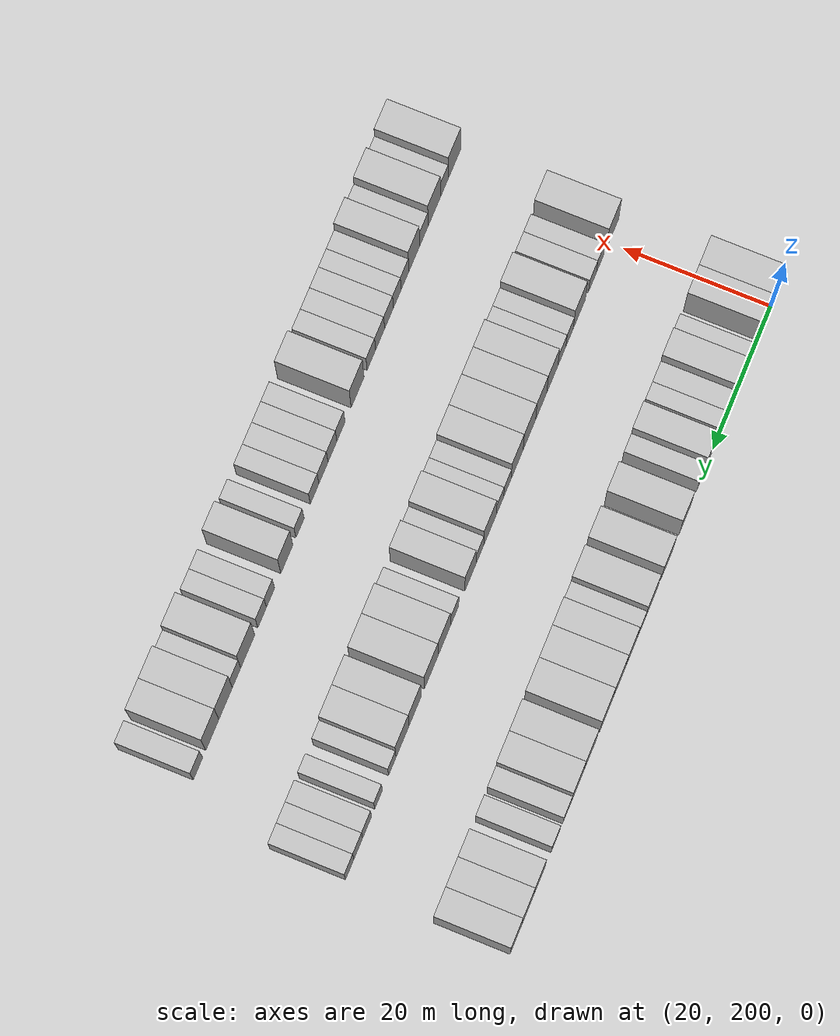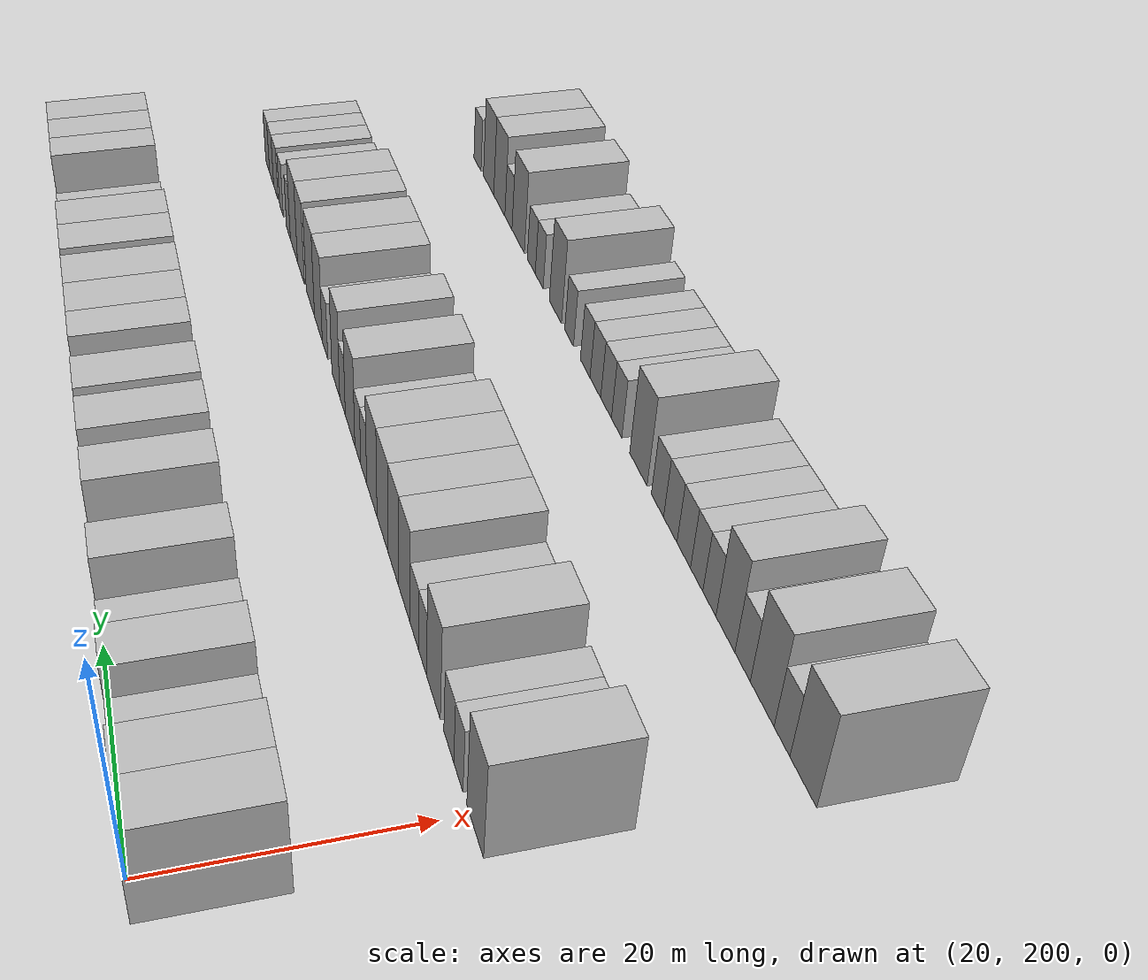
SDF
<sdf version="1.6">
 <world name="default">
  <model name="building_151">
   <static>1</static>
   <pose>25.0000 198.8395 0 0.000000 0.000000 0.000000</pose>
   <link name="link">
    <pose>0 0 4.50 0 0 0</pose>
    <collision name="collision"><geometry><box><size>10.0000 4.0665 9.0000</size></box></geometry></collision>
    <visual name="visual">
     <cast_shadows>0</cast_shadows>
     <geometry><box><size>10.0000 4.0665 9.0000</size></box></geometry>
     <material>
      <script>
       <uri>model://HANNAS_wall/materials/scripts</uri>
       <uri>model://HANNAS_wall/materials/textures</uri>
       <name>vrc/HANNAS_wall</name>
      </script>
     </material>
    </visual>
   </link>
  </model>
  <model name="building_152">
   <static>1</static>
   <pose>25.0000 202.8306 0 0.000000 0.000000 0.000000</pose>
   <link name="link">
    <pose>0 0 4.50 0 0 0</pose>
    <collision name="collision"><geometry><box><size>10.0000 3.9157 9.0000</size></box></geometry></collision>
    <visual name="visual">
     <cast_shadows>0</cast_shadows>
     <geometry><box><size>10.0000 3.9157 9.0000</size></box></geometry>
     <material>
      <script>
       <uri>model://HANNAS_wall/materials/scripts</uri>
       <uri>model://HANNAS_wall/materials/textures</uri>
       <name>vrc/HANNAS_wall</name>
      </script>
     </material>
    </visual>
   </link>
  </model>
  <model name="building_153">
   <static>1</static>
   <pose>25.0000 208.1707 0 0.000000 0.000000 0.000000</pose>
   <link name="link">
    <pose>0 0 3.00 0 0 0</pose>
    <collision name="collision"><geometry><box><size>10.0000 2.7646 6.0000</size></box></geometry></collision>
    <visual name="visual">
     <cast_shadows>0</cast_shadows>
     <geometry><box><size>10.0000 2.7646 6.0000</size></box></geometry>
     <material>
      <script>
       <uri>model://HANNAS_wall/materials/scripts</uri>
       <uri>model://HANNAS_wall/materials/textures</uri>
       <name>vrc/HANNAS_wall</name>
      </script>
     </material>
    </visual>
   </link>
  </model>
  <model name="building_154">
   <static>1</static>
   <pose>25.0000 211.4504 0 0.000000 0.000000 0.000000</pose>
   <link name="link">
    <pose>0 0 4.50 0 0 0</pose>
    <collision name="collision"><geometry><box><size>10.0000 3.7949 9.0000</size></box></geometry></collision>
    <visual name="visual">
     <cast_shadows>0</cast_shadows>
     <geometry><box><size>10.0000 3.7949 9.0000</size></box></geometry>
     <material>
      <script>
       <uri>model://HANNAS_wall/materials/scripts</uri>
       <uri>model://HANNAS_wall/materials/textures</uri>
       <name>vrc/HANNAS_wall</name>
      </script>
     </material>
    </visual>
   </link>
  </model>
  <model name="building_155">
   <static>1</static>
   <pose>25.0000 214.7604 0 0.000000 0.000000 0.000000</pose>
   <link name="link">
    <pose>0 0 3.00 0 0 0</pose>
    <collision name="collision"><geometry><box><size>10.0000 2.8251 6.0000</size></box></geometry></collision>
    <visual name="visual">
     <cast_shadows>0</cast_shadows>
     <geometry><box><size>10.0000 2.8251 6.0000</size></box></geometry>
     <material>
      <script>
       <uri>model://HANNAS_wall/materials/scripts</uri>
       <uri>model://HANNAS_wall/materials/textures</uri>
       <name>vrc/HANNAS_wall</name>
      </script>
     </material>
    </visual>
   </link>
  </model>
  <model name="building_156">
   <static>1</static>
   <pose>25.0000 217.3881 0 0.000000 0.000000 0.000000</pose>
   <link name="link">
    <pose>0 0 3.00 0 0 0</pose>
    <collision name="collision"><geometry><box><size>10.0000 2.4304 6.0000</size></box></geometry></collision>
    <visual name="visual">
     <cast_shadows>0</cast_shadows>
     <geometry><box><size>10.0000 2.4304 6.0000</size></box></geometry>
     <material>
      <script>
       <uri>model://HANNAS_wall/materials/scripts</uri>
       <uri>model://HANNAS_wall/materials/textures</uri>
       <name>vrc/HANNAS_wall</name>
      </script>
     </material>
    </visual>
   </link>
  </model>
  <model name="building_157">
   <static>1</static>
   <pose>25.0000 221.4454 0 0.000000 0.000000 0.000000</pose>
   <link name="link">
    <pose>0 0 4.50 0 0 0</pose>
    <collision name="collision"><geometry><box><size>10.0000 3.6842 9.0000</size></box></geometry></collision>
    <visual name="visual">
     <cast_shadows>0</cast_shadows>
     <geometry><box><size>10.0000 3.6842 9.0000</size></box></geometry>
     <material>
      <script>
       <uri>model://HANNAS_wall/materials/scripts</uri>
       <uri>model://HANNAS_wall/materials/textures</uri>
       <name>vrc/HANNAS_wall</name>
      </script>
     </material>
    </visual>
   </link>
  </model>
  <model name="building_158">
   <static>1</static>
   <pose>25.0000 224.5433 0 0.000000 0.000000 0.000000</pose>
   <link name="link">
    <pose>0 0 3.00 0 0 0</pose>
    <collision name="collision"><geometry><box><size>10.0000 2.5116 6.0000</size></box></geometry></collision>
    <visual name="visual">
     <cast_shadows>0</cast_shadows>
     <geometry><box><size>10.0000 2.5116 6.0000</size></box></geometry>
     <material>
      <script>
       <uri>model://HANNAS_wall/materials/scripts</uri>
       <uri>model://HANNAS_wall/materials/textures</uri>
       <name>vrc/HANNAS_wall</name>
      </script>
     </material>
    </visual>
   </link>
  </model>
  <model name="building_159">
   <static>1</static>
   <pose>25.0000 229.7983 0 0.000000 0.000000 0.000000</pose>
   <link name="link">
    <pose>0 0 4.50 0 0 0</pose>
    <collision name="collision"><geometry><box><size>10.0000 3.9984 9.0000</size></box></geometry></collision>
    <visual name="visual">
     <cast_shadows>0</cast_shadows>
     <geometry><box><size>10.0000 3.9984 9.0000</size></box></geometry>
     <material>
      <script>
       <uri>model://HANNAS_wall/materials/scripts</uri>
       <uri>model://HANNAS_wall/materials/textures</uri>
       <name>vrc/HANNAS_wall</name>
      </script>
     </material>
    </visual>
   </link>
  </model>
  <model name="building_160">
   <static>1</static>
   <pose>25.0000 235.8976 0 0.000000 0.000000 0.000000</pose>
   <link name="link">
    <pose>0 0 4.50 0 0 0</pose>
    <collision name="collision"><geometry><box><size>10.0000 4.2003 9.0000</size></box></geometry></collision>
    <visual name="visual">
     <cast_shadows>0</cast_shadows>
     <geometry><box><size>10.0000 4.2003 9.0000</size></box></geometry>
     <material>
      <script>
       <uri>model://HANNAS_wall/materials/scripts</uri>
       <uri>model://HANNAS_wall/materials/textures</uri>
       <name>vrc/HANNAS_wall</name>
      </script>
     </material>
    </visual>
   </link>
  </model>
  <model name="building_161">
   <static>1</static>
   <pose>25.0000 241.1460 0 0.000000 0.000000 0.000000</pose>
   <link name="link">
    <pose>0 0 4.50 0 0 0</pose>
    <collision name="collision"><geometry><box><size>10.0000 4.2965 9.0000</size></box></geometry></collision>
    <visual name="visual">
     <cast_shadows>0</cast_shadows>
     <geometry><box><size>10.0000 4.2965 9.0000</size></box></geometry>
     <material>
      <script>
       <uri>model://HANNAS_wall/materials/scripts</uri>
       <uri>model://HANNAS_wall/materials/textures</uri>
       <name>vrc/HANNAS_wall</name>
      </script>
     </material>
    </visual>
   </link>
  </model>
  <model name="building_162">
   <static>1</static>
   <pose>25.0000 244.6496 0 0.000000 0.000000 0.000000</pose>
   <link name="link">
    <pose>0 0 3.00 0 0 0</pose>
    <collision name="collision"><geometry><box><size>10.0000 2.7106 6.0000</size></box></geometry></collision>
    <visual name="visual">
     <cast_shadows>0</cast_shadows>
     <geometry><box><size>10.0000 2.7106 6.0000</size></box></geometry>
     <material>
      <script>
       <uri>model://HANNAS_wall/materials/scripts</uri>
       <uri>model://HANNAS_wall/materials/textures</uri>
       <name>vrc/HANNAS_wall</name>
      </script>
     </material>
    </visual>
   </link>
  </model>
  <model name="building_163">
   <static>1</static>
   <pose>25.0000 247.8586 0 0.000000 0.000000 0.000000</pose>
   <link name="link">
    <pose>0 0 4.50 0 0 0</pose>
    <collision name="collision"><geometry><box><size>10.0000 3.7075 9.0000</size></box></geometry></collision>
    <visual name="visual">
     <cast_shadows>0</cast_shadows>
     <geometry><box><size>10.0000 3.7075 9.0000</size></box></geometry>
     <material>
      <script>
       <uri>model://HANNAS_wall/materials/scripts</uri>
       <uri>model://HANNAS_wall/materials/textures</uri>
       <name>vrc/HANNAS_wall</name>
      </script>
     </material>
    </visual>
   </link>
  </model>
  <model name="building_164">
   <static>1</static>
   <pose>25.0000 251.8701 0 0.000000 0.000000 0.000000</pose>
   <link name="link">
    <pose>0 0 4.50 0 0 0</pose>
    <collision name="collision"><geometry><box><size>10.0000 4.3155 9.0000</size></box></geometry></collision>
    <visual name="visual">
     <cast_shadows>0</cast_shadows>
     <geometry><box><size>10.0000 4.3155 9.0000</size></box></geometry>
     <material>
      <script>
       <uri>model://HANNAS_wall/materials/scripts</uri>
       <uri>model://HANNAS_wall/materials/textures</uri>
       <name>vrc/HANNAS_wall</name>
      </script>
     </material>
    </visual>
   </link>
  </model>
  <model name="building_165">
   <static>1</static>
   <pose>25.0000 256.2636 0 0.000000 0.000000 0.000000</pose>
   <link name="link">
    <pose>0 0 4.50 0 0 0</pose>
    <collision name="collision"><geometry><box><size>10.0000 4.4715 9.0000</size></box></geometry></collision>
    <visual name="visual">
     <cast_shadows>0</cast_shadows>
     <geometry><box><size>10.0000 4.4715 9.0000</size></box></geometry>
     <material>
      <script>
       <uri>model://HANNAS_wall/materials/scripts</uri>
       <uri>model://HANNAS_wall/materials/textures</uri>
       <name>vrc/HANNAS_wall</name>
      </script>
     </material>
    </visual>
   </link>
  </model>
  <model name="building_166">
   <static>1</static>
   <pose>25.0000 261.6000 0 0.000000 0.000000 0.000000</pose>
   <link name="link">
    <pose>0 0 4.50 0 0 0</pose>
    <collision name="collision"><geometry><box><size>10.0000 4.2015 9.0000</size></box></geometry></collision>
    <visual name="visual">
     <cast_shadows>0</cast_shadows>
     <geometry><box><size>10.0000 4.2015 9.0000</size></box></geometry>
     <material>
      <script>
       <uri>model://HANNAS_wall/materials/scripts</uri>
       <uri>model://HANNAS_wall/materials/textures</uri>
       <name>vrc/HANNAS_wall</name>
      </script>
     </material>
    </visual>
   </link>
  </model>
  <model name="building_167">
   <static>1</static>
   <pose>25.0000 265.7831 0 0.000000 0.000000 0.000000</pose>
   <link name="link">
    <pose>0 0 4.50 0 0 0</pose>
    <collision name="collision"><geometry><box><size>10.0000 4.1646 9.0000</size></box></geometry></collision>
    <visual name="visual">
     <cast_shadows>0</cast_shadows>
     <geometry><box><size>10.0000 4.1646 9.0000</size></box></geometry>
     <material>
      <script>
       <uri>model://HANNAS_wall/materials/scripts</uri>
       <uri>model://HANNAS_wall/materials/textures</uri>
       <name>vrc/HANNAS_wall</name>
      </script>
     </material>
    </visual>
   </link>
  </model>
  <model name="building_168">
   <static>1</static>
   <pose>25.0000 269.2791 0 0.000000 0.000000 0.000000</pose>
   <link name="link">
    <pose>0 0 3.00 0 0 0</pose>
    <collision name="collision"><geometry><box><size>10.0000 2.8274 6.0000</size></box></geometry></collision>
    <visual name="visual">
     <cast_shadows>0</cast_shadows>
     <geometry><box><size>10.0000 2.8274 6.0000</size></box></geometry>
     <material>
      <script>
       <uri>model://HANNAS_wall/materials/scripts</uri>
       <uri>model://HANNAS_wall/materials/textures</uri>
       <name>vrc/HANNAS_wall</name>
      </script>
     </material>
    </visual>
   </link>
  </model>
  <model name="building_169">
   <static>1</static>
   <pose>25.0000 273.1002 0 0.000000 0.000000 0.000000</pose>
   <link name="link">
    <pose>0 0 3.00 0 0 0</pose>
    <collision name="collision"><geometry><box><size>10.0000 2.8147 6.0000</size></box></geometry></collision>
    <visual name="visual">
     <cast_shadows>0</cast_shadows>
     <geometry><box><size>10.0000 2.8147 6.0000</size></box></geometry>
     <material>
      <script>
       <uri>model://HANNAS_wall/materials/scripts</uri>
       <uri>model://HANNAS_wall/materials/textures</uri>
       <name>vrc/HANNAS_wall</name>
      </script>
     </material>
    </visual>
   </link>
  </model>
  <model name="building_170">
   <static>1</static>
   <pose>25.0000 278.3280 0 0.000000 0.000000 0.000000</pose>
   <link name="link">
    <pose>0 0 4.50 0 0 0</pose>
    <collision name="collision"><geometry><box><size>10.0000 3.6409 9.0000</size></box></geometry></collision>
    <visual name="visual">
     <cast_shadows>0</cast_shadows>
     <geometry><box><size>10.0000 3.6409 9.0000</size></box></geometry>
     <material>
      <script>
       <uri>model://HANNAS_wall/materials/scripts</uri>
       <uri>model://HANNAS_wall/materials/textures</uri>
       <name>vrc/HANNAS_wall</name>
      </script>
     </material>
    </visual>
   </link>
  </model>
  <model name="building_171">
   <static>1</static>
   <pose>25.0000 282.0927 0 0.000000 0.000000 0.000000</pose>
   <link name="link">
    <pose>0 0 4.50 0 0 0</pose>
    <collision name="collision"><geometry><box><size>10.0000 3.8886 9.0000</size></box></geometry></collision>
    <visual name="visual">
     <cast_shadows>0</cast_shadows>
     <geometry><box><size>10.0000 3.8886 9.0000</size></box></geometry>
     <material>
      <script>
       <uri>model://HANNAS_wall/materials/scripts</uri>
       <uri>model://HANNAS_wall/materials/textures</uri>
       <name>vrc/HANNAS_wall</name>
      </script>
     </material>
    </visual>
   </link>
  </model>
  <model name="building_172">
   <static>1</static>
   <pose>25.0000 285.9681 0 0.000000 0.000000 0.000000</pose>
   <link name="link">
    <pose>0 0 4.50 0 0 0</pose>
    <collision name="collision"><geometry><box><size>10.0000 3.8622 9.0000</size></box></geometry></collision>
    <visual name="visual">
     <cast_shadows>0</cast_shadows>
     <geometry><box><size>10.0000 3.8622 9.0000</size></box></geometry>
     <material>
      <script>
       <uri>model://HANNAS_wall/materials/scripts</uri>
       <uri>model://HANNAS_wall/materials/textures</uri>
       <name>vrc/HANNAS_wall</name>
      </script>
     </material>
    </visual>
   </link>
  </model>
  <model name="building_349">
   <static>1</static>
   <pose>47.0000 198.7653 0 0.000000 0.000000 0.000000</pose>
   <link name="link">
    <pose>0 0 4.50 0 0 0</pose>
    <collision name="collision"><geometry><box><size>10.0000 4.2036 9.0000</size></box></geometry></collision>
    <visual name="visual">
     <cast_shadows>0</cast_shadows>
     <geometry><box><size>10.0000 4.2036 9.0000</size></box></geometry>
     <material>
      <script>
       <uri>model://HANNAS_wall/materials/scripts</uri>
       <uri>model://HANNAS_wall/materials/textures</uri>
       <name>vrc/HANNAS_wall</name>
      </script>
     </material>
    </visual>
   </link>
  </model>
  <model name="building_350">
   <static>1</static>
   <pose>47.0000 203.0948 0 0.000000 0.000000 0.000000</pose>
   <link name="link">
    <pose>0 0 3.00 0 0 0</pose>
    <collision name="collision"><geometry><box><size>10.0000 2.4553 6.0000</size></box></geometry></collision>
    <visual name="visual">
     <cast_shadows>0</cast_shadows>
     <geometry><box><size>10.0000 2.4553 6.0000</size></box></geometry>
     <material>
      <script>
       <uri>model://HANNAS_wall/materials/scripts</uri>
       <uri>model://HANNAS_wall/materials/textures</uri>
       <name>vrc/HANNAS_wall</name>
      </script>
     </material>
    </visual>
   </link>
  </model>
  <model name="building_351">
   <static>1</static>
   <pose>47.0000 205.7005 0 0.000000 0.000000 0.000000</pose>
   <link name="link">
    <pose>0 0 3.00 0 0 0</pose>
    <collision name="collision"><geometry><box><size>10.0000 2.7562 6.0000</size></box></geometry></collision>
    <visual name="visual">
     <cast_shadows>0</cast_shadows>
     <geometry><box><size>10.0000 2.7562 6.0000</size></box></geometry>
     <material>
      <script>
       <uri>model://HANNAS_wall/materials/scripts</uri>
       <uri>model://HANNAS_wall/materials/textures</uri>
       <name>vrc/HANNAS_wall</name>
      </script>
     </material>
    </visual>
   </link>
  </model>
  <model name="building_352">
   <static>1</static>
   <pose>47.0000 210.1331 0 0.000000 0.000000 0.000000</pose>
   <link name="link">
    <pose>0 0 4.50 0 0 0</pose>
    <collision name="collision"><geometry><box><size>10.0000 4.1090 9.0000</size></box></geometry></collision>
    <visual name="visual">
     <cast_shadows>0</cast_shadows>
     <geometry><box><size>10.0000 4.1090 9.0000</size></box></geometry>
     <material>
      <script>
       <uri>model://HANNAS_wall/materials/scripts</uri>
       <uri>model://HANNAS_wall/materials/textures</uri>
       <name>vrc/HANNAS_wall</name>
      </script>
     </material>
    </visual>
   </link>
  </model>
  <model name="building_353">
   <static>1</static>
   <pose>47.0000 213.4227 0 0.000000 0.000000 0.000000</pose>
   <link name="link">
    <pose>0 0 3.00 0 0 0</pose>
    <collision name="collision"><geometry><box><size>10.0000 2.4702 6.0000</size></box></geometry></collision>
    <visual name="visual">
     <cast_shadows>0</cast_shadows>
     <geometry><box><size>10.0000 2.4702 6.0000</size></box></geometry>
     <material>
      <script>
       <uri>model://HANNAS_wall/materials/scripts</uri>
       <uri>model://HANNAS_wall/materials/textures</uri>
       <name>vrc/HANNAS_wall</name>
      </script>
     </material>
    </visual>
   </link>
  </model>
  <model name="building_354">
   <static>1</static>
   <pose>47.0000 216.0249 0 0.000000 0.000000 0.000000</pose>
   <link name="link">
    <pose>0 0 3.00 0 0 0</pose>
    <collision name="collision"><geometry><box><size>10.0000 2.7341 6.0000</size></box></geometry></collision>
    <visual name="visual">
     <cast_shadows>0</cast_shadows>
     <geometry><box><size>10.0000 2.7341 6.0000</size></box></geometry>
     <material>
      <script>
       <uri>model://HANNAS_wall/materials/scripts</uri>
       <uri>model://HANNAS_wall/materials/textures</uri>
       <name>vrc/HANNAS_wall</name>
      </script>
     </material>
    </visual>
   </link>
  </model>
  <model name="building_355">
   <static>1</static>
   <pose>47.0000 219.2687 0 0.000000 0.000000 0.000000</pose>
   <link name="link">
    <pose>0 0 4.50 0 0 0</pose>
    <collision name="collision"><geometry><box><size>10.0000 3.7533 9.0000</size></box></geometry></collision>
    <visual name="visual">
     <cast_shadows>0</cast_shadows>
     <geometry><box><size>10.0000 3.7533 9.0000</size></box></geometry>
     <material>
      <script>
       <uri>model://HANNAS_wall/materials/scripts</uri>
       <uri>model://HANNAS_wall/materials/textures</uri>
       <name>vrc/HANNAS_wall</name>
      </script>
     </material>
    </visual>
   </link>
  </model>
  <model name="building_356">
   <static>1</static>
   <pose>47.0000 223.0115 0 0.000000 0.000000 0.000000</pose>
   <link name="link">
    <pose>0 0 4.50 0 0 0</pose>
    <collision name="collision"><geometry><box><size>10.0000 3.7324 9.0000</size></box></geometry></collision>
    <visual name="visual">
     <cast_shadows>0</cast_shadows>
     <geometry><box><size>10.0000 3.7324 9.0000</size></box></geometry>
     <material>
      <script>
       <uri>model://HANNAS_wall/materials/scripts</uri>
       <uri>model://HANNAS_wall/materials/textures</uri>
       <name>vrc/HANNAS_wall</name>
      </script>
     </material>
    </visual>
   </link>
  </model>
  <model name="building_357">
   <static>1</static>
   <pose>47.0000 226.9668 0 0.000000 0.000000 0.000000</pose>
   <link name="link">
    <pose>0 0 4.50 0 0 0</pose>
    <collision name="collision"><geometry><box><size>10.0000 4.1781 9.0000</size></box></geometry></collision>
    <visual name="visual">
     <cast_shadows>0</cast_shadows>
     <geometry><box><size>10.0000 4.1781 9.0000</size></box></geometry>
     <material>
      <script>
       <uri>model://HANNAS_wall/materials/scripts</uri>
       <uri>model://HANNAS_wall/materials/textures</uri>
       <name>vrc/HANNAS_wall</name>
      </script>
     </material>
    </visual>
   </link>
  </model>
  <model name="building_358">
   <static>1</static>
   <pose>47.0000 231.0822 0 0.000000 0.000000 0.000000</pose>
   <link name="link">
    <pose>0 0 4.50 0 0 0</pose>
    <collision name="collision"><geometry><box><size>10.0000 4.0526 9.0000</size></box></geometry></collision>
    <visual name="visual">
     <cast_shadows>0</cast_shadows>
     <geometry><box><size>10.0000 4.0526 9.0000</size></box></geometry>
     <material>
      <script>
       <uri>model://HANNAS_wall/materials/scripts</uri>
       <uri>model://HANNAS_wall/materials/textures</uri>
       <name>vrc/HANNAS_wall</name>
      </script>
     </material>
    </visual>
   </link>
  </model>
  <model name="building_359">
   <static>1</static>
   <pose>47.0000 234.3219 0 0.000000 0.000000 0.000000</pose>
   <link name="link">
    <pose>0 0 3.00 0 0 0</pose>
    <collision name="collision"><geometry><box><size>10.0000 2.4268 6.0000</size></box></geometry></collision>
    <visual name="visual">
     <cast_shadows>0</cast_shadows>
     <geometry><box><size>10.0000 2.4268 6.0000</size></box></geometry>
     <material>
      <script>
       <uri>model://HANNAS_wall/materials/scripts</uri>
       <uri>model://HANNAS_wall/materials/textures</uri>
       <name>vrc/HANNAS_wall</name>
      </script>
     </material>
    </visual>
   </link>
  </model>
  <model name="building_360">
   <static>1</static>
   <pose>47.0000 236.7715 0 0.000000 0.000000 0.000000</pose>
   <link name="link">
    <pose>0 0 3.00 0 0 0</pose>
    <collision name="collision"><geometry><box><size>10.0000 2.4724 6.0000</size></box></geometry></collision>
    <visual name="visual">
     <cast_shadows>0</cast_shadows>
     <geometry><box><size>10.0000 2.4724 6.0000</size></box></geometry>
     <material>
      <script>
       <uri>model://HANNAS_wall/materials/scripts</uri>
       <uri>model://HANNAS_wall/materials/textures</uri>
       <name>vrc/HANNAS_wall</name>
      </script>
     </material>
    </visual>
   </link>
  </model>
  <model name="building_361">
   <static>1</static>
   <pose>47.0000 240.0887 0 0.000000 0.000000 0.000000</pose>
   <link name="link">
    <pose>0 0 4.50 0 0 0</pose>
    <collision name="collision"><geometry><box><size>10.0000 4.1621 9.0000</size></box></geometry></collision>
    <visual name="visual">
     <cast_shadows>0</cast_shadows>
     <geometry><box><size>10.0000 4.1621 9.0000</size></box></geometry>
     <material>
      <script>
       <uri>model://HANNAS_wall/materials/scripts</uri>
       <uri>model://HANNAS_wall/materials/textures</uri>
       <name>vrc/HANNAS_wall</name>
      </script>
     </material>
    </visual>
   </link>
  </model>
  <model name="building_362">
   <static>1</static>
   <pose>47.0000 243.4440 0 0.000000 0.000000 0.000000</pose>
   <link name="link">
    <pose>0 0 3.00 0 0 0</pose>
    <collision name="collision"><geometry><box><size>10.0000 2.5485 6.0000</size></box></geometry></collision>
    <visual name="visual">
     <cast_shadows>0</cast_shadows>
     <geometry><box><size>10.0000 2.5485 6.0000</size></box></geometry>
     <material>
      <script>
       <uri>model://HANNAS_wall/materials/scripts</uri>
       <uri>model://HANNAS_wall/materials/textures</uri>
       <name>vrc/HANNAS_wall</name>
      </script>
     </material>
    </visual>
   </link>
  </model>
  <model name="building_363">
   <static>1</static>
   <pose>47.0000 246.5467 0 0.000000 0.000000 0.000000</pose>
   <link name="link">
    <pose>0 0 4.50 0 0 0</pose>
    <collision name="collision"><geometry><box><size>10.0000 3.6569 9.0000</size></box></geometry></collision>
    <visual name="visual">
     <cast_shadows>0</cast_shadows>
     <geometry><box><size>10.0000 3.6569 9.0000</size></box></geometry>
     <material>
      <script>
       <uri>model://HANNAS_wall/materials/scripts</uri>
       <uri>model://HANNAS_wall/materials/textures</uri>
       <name>vrc/HANNAS_wall</name>
      </script>
     </material>
    </visual>
   </link>
  </model>
  <model name="building_364">
   <static>1</static>
   <pose>47.0000 251.7498 0 0.000000 0.000000 0.000000</pose>
   <link name="link">
    <pose>0 0 3.00 0 0 0</pose>
    <collision name="collision"><geometry><box><size>10.0000 2.7493 6.0000</size></box></geometry></collision>
    <visual name="visual">
     <cast_shadows>0</cast_shadows>
     <geometry><box><size>10.0000 2.7493 6.0000</size></box></geometry>
     <material>
      <script>
       <uri>model://HANNAS_wall/materials/scripts</uri>
       <uri>model://HANNAS_wall/materials/textures</uri>
       <name>vrc/HANNAS_wall</name>
      </script>
     </material>
    </visual>
   </link>
  </model>
  <model name="building_365">
   <static>1</static>
   <pose>47.0000 255.1369 0 0.000000 0.000000 0.000000</pose>
   <link name="link">
    <pose>0 0 4.50 0 0 0</pose>
    <collision name="collision"><geometry><box><size>10.0000 4.0249 9.0000</size></box></geometry></collision>
    <visual name="visual">
     <cast_shadows>0</cast_shadows>
     <geometry><box><size>10.0000 4.0249 9.0000</size></box></geometry>
     <material>
      <script>
       <uri>model://HANNAS_wall/materials/scripts</uri>
       <uri>model://HANNAS_wall/materials/textures</uri>
       <name>vrc/HANNAS_wall</name>
      </script>
     </material>
    </visual>
   </link>
  </model>
  <model name="building_366">
   <static>1</static>
   <pose>47.0000 259.3922 0 0.000000 0.000000 0.000000</pose>
   <link name="link">
    <pose>0 0 4.50 0 0 0</pose>
    <collision name="collision"><geometry><box><size>10.0000 4.4857 9.0000</size></box></geometry></collision>
    <visual name="visual">
     <cast_shadows>0</cast_shadows>
     <geometry><box><size>10.0000 4.4857 9.0000</size></box></geometry>
     <material>
      <script>
       <uri>model://HANNAS_wall/materials/scripts</uri>
       <uri>model://HANNAS_wall/materials/textures</uri>
       <name>vrc/HANNAS_wall</name>
      </script>
     </material>
    </visual>
   </link>
  </model>
  <model name="building_367">
   <static>1</static>
   <pose>47.0000 264.6232 0 0.000000 0.000000 0.000000</pose>
   <link name="link">
    <pose>0 0 4.50 0 0 0</pose>
    <collision name="collision"><geometry><box><size>10.0000 3.9763 9.0000</size></box></geometry></collision>
    <visual name="visual">
     <cast_shadows>0</cast_shadows>
     <geometry><box><size>10.0000 3.9763 9.0000</size></box></geometry>
     <material>
      <script>
       <uri>model://HANNAS_wall/materials/scripts</uri>
       <uri>model://HANNAS_wall/materials/textures</uri>
       <name>vrc/HANNAS_wall</name>
      </script>
     </material>
    </visual>
   </link>
  </model>
  <model name="building_368">
   <static>1</static>
   <pose>47.0000 268.7238 0 0.000000 0.000000 0.000000</pose>
   <link name="link">
    <pose>0 0 4.50 0 0 0</pose>
    <collision name="collision"><geometry><box><size>10.0000 4.2251 9.0000</size></box></geometry></collision>
    <visual name="visual">
     <cast_shadows>0</cast_shadows>
     <geometry><box><size>10.0000 4.2251 9.0000</size></box></geometry>
     <material>
      <script>
       <uri>model://HANNAS_wall/materials/scripts</uri>
       <uri>model://HANNAS_wall/materials/textures</uri>
       <name>vrc/HANNAS_wall</name>
      </script>
     </material>
    </visual>
   </link>
  </model>
  <model name="building_369">
   <static>1</static>
   <pose>47.0000 272.0432 0 0.000000 0.000000 0.000000</pose>
   <link name="link">
    <pose>0 0 3.00 0 0 0</pose>
    <collision name="collision"><geometry><box><size>10.0000 2.4136 6.0000</size></box></geometry></collision>
    <visual name="visual">
     <cast_shadows>0</cast_shadows>
     <geometry><box><size>10.0000 2.4136 6.0000</size></box></geometry>
     <material>
      <script>
       <uri>model://HANNAS_wall/materials/scripts</uri>
       <uri>model://HANNAS_wall/materials/textures</uri>
       <name>vrc/HANNAS_wall</name>
      </script>
     </material>
    </visual>
   </link>
  </model>
  <model name="building_370">
   <static>1</static>
   <pose>47.0000 276.4825 0 0.000000 0.000000 0.000000</pose>
   <link name="link">
    <pose>0 0 3.00 0 0 0</pose>
    <collision name="collision"><geometry><box><size>10.0000 2.4652 6.0000</size></box></geometry></collision>
    <visual name="visual">
     <cast_shadows>0</cast_shadows>
     <geometry><box><size>10.0000 2.4652 6.0000</size></box></geometry>
     <material>
      <script>
       <uri>model://HANNAS_wall/materials/scripts</uri>
       <uri>model://HANNAS_wall/materials/textures</uri>
       <name>vrc/HANNAS_wall</name>
      </script>
     </material>
    </visual>
   </link>
  </model>
  <model name="building_371">
   <static>1</static>
   <pose>47.0000 280.1520 0 0.000000 0.000000 0.000000</pose>
   <link name="link">
    <pose>0 0 3.00 0 0 0</pose>
    <collision name="collision"><geometry><box><size>10.0000 2.8737 6.0000</size></box></geometry></collision>
    <visual name="visual">
     <cast_shadows>0</cast_shadows>
     <geometry><box><size>10.0000 2.8737 6.0000</size></box></geometry>
     <material>
      <script>
       <uri>model://HANNAS_wall/materials/scripts</uri>
       <uri>model://HANNAS_wall/materials/textures</uri>
       <name>vrc/HANNAS_wall</name>
      </script>
     </material>
    </visual>
   </link>
  </model>
  <model name="building_372">
   <static>1</static>
   <pose>47.0000 282.9781 0 0.000000 0.000000 0.000000</pose>
   <link name="link">
    <pose>0 0 3.00 0 0 0</pose>
    <collision name="collision"><geometry><box><size>10.0000 2.7786 6.0000</size></box></geometry></collision>
    <visual name="visual">
     <cast_shadows>0</cast_shadows>
     <geometry><box><size>10.0000 2.7786 6.0000</size></box></geometry>
     <material>
      <script>
       <uri>model://HANNAS_wall/materials/scripts</uri>
       <uri>model://HANNAS_wall/materials/textures</uri>
       <name>vrc/HANNAS_wall</name>
      </script>
     </material>
    </visual>
   </link>
  </model>
  <model name="building_373">
   <static>1</static>
   <pose>47.0000 285.7168 0 0.000000 0.000000 0.000000</pose>
   <link name="link">
    <pose>0 0 3.00 0 0 0</pose>
    <collision name="collision"><geometry><box><size>10.0000 2.6987 6.0000</size></box></geometry></collision>
    <visual name="visual">
     <cast_shadows>0</cast_shadows>
     <geometry><box><size>10.0000 2.6987 6.0000</size></box></geometry>
     <material>
      <script>
       <uri>model://HANNAS_wall/materials/scripts</uri>
       <uri>model://HANNAS_wall/materials/textures</uri>
       <name>vrc/HANNAS_wall</name>
      </script>
     </material>
    </visual>
   </link>
  </model>
  <model name="building_535">
   <static>1</static>
   <pose>69.0000 197.7618 0 0.000000 0.000000 0.000000</pose>
   <link name="link">
    <pose>0 0 4.50 0 0 0</pose>
    <collision name="collision"><geometry><box><size>10.0000 4.2297 9.0000</size></box></geometry></collision>
    <visual name="visual">
     <cast_shadows>0</cast_shadows>
     <geometry><box><size>10.0000 4.2297 9.0000</size></box></geometry>
     <material>
      <script>
       <uri>model://HANNAS_wall/materials/scripts</uri>
       <uri>model://HANNAS_wall/materials/textures</uri>
       <name>vrc/HANNAS_wall</name>
      </script>
     </material>
    </visual>
   </link>
  </model>
  <model name="building_536">
   <static>1</static>
   <pose>69.0000 201.1841 0 0.000000 0.000000 0.000000</pose>
   <link name="link">
    <pose>0 0 3.00 0 0 0</pose>
    <collision name="collision"><geometry><box><size>10.0000 2.6148 6.0000</size></box></geometry></collision>
    <visual name="visual">
     <cast_shadows>0</cast_shadows>
     <geometry><box><size>10.0000 2.6148 6.0000</size></box></geometry>
     <material>
      <script>
       <uri>model://HANNAS_wall/materials/scripts</uri>
       <uri>model://HANNAS_wall/materials/textures</uri>
       <name>vrc/HANNAS_wall</name>
      </script>
     </material>
    </visual>
   </link>
  </model>
  <model name="building_537">
   <static>1</static>
   <pose>69.0000 204.5604 0 0.000000 0.000000 0.000000</pose>
   <link name="link">
    <pose>0 0 4.50 0 0 0</pose>
    <collision name="collision"><geometry><box><size>10.0000 4.1378 9.0000</size></box></geometry></collision>
    <visual name="visual">
     <cast_shadows>0</cast_shadows>
     <geometry><box><size>10.0000 4.1378 9.0000</size></box></geometry>
     <material>
      <script>
       <uri>model://HANNAS_wall/materials/scripts</uri>
       <uri>model://HANNAS_wall/materials/textures</uri>
       <name>vrc/HANNAS_wall</name>
      </script>
     </material>
    </visual>
   </link>
  </model>
  <model name="building_538">
   <static>1</static>
   <pose>69.0000 208.0350 0 0.000000 0.000000 0.000000</pose>
   <link name="link">
    <pose>0 0 3.00 0 0 0</pose>
    <collision name="collision"><geometry><box><size>10.0000 2.8112 6.0000</size></box></geometry></collision>
    <visual name="visual">
     <cast_shadows>0</cast_shadows>
     <geometry><box><size>10.0000 2.8112 6.0000</size></box></geometry>
     <material>
      <script>
       <uri>model://HANNAS_wall/materials/scripts</uri>
       <uri>model://HANNAS_wall/materials/textures</uri>
       <name>vrc/HANNAS_wall</name>
      </script>
     </material>
    </visual>
   </link>
  </model>
  <model name="building_539">
   <static>1</static>
   <pose>69.0000 211.2509 0 0.000000 0.000000 0.000000</pose>
   <link name="link">
    <pose>0 0 4.50 0 0 0</pose>
    <collision name="collision"><geometry><box><size>10.0000 3.6206 9.0000</size></box></geometry></collision>
    <visual name="visual">
     <cast_shadows>0</cast_shadows>
     <geometry><box><size>10.0000 3.6206 9.0000</size></box></geometry>
     <material>
      <script>
       <uri>model://HANNAS_wall/materials/scripts</uri>
       <uri>model://HANNAS_wall/materials/textures</uri>
       <name>vrc/HANNAS_wall</name>
      </script>
     </material>
    </visual>
   </link>
  </model>
  <model name="building_540">
   <static>1</static>
   <pose>69.0000 214.3655 0 0.000000 0.000000 0.000000</pose>
   <link name="link">
    <pose>0 0 3.00 0 0 0</pose>
    <collision name="collision"><geometry><box><size>10.0000 2.6085 6.0000</size></box></geometry></collision>
    <visual name="visual">
     <cast_shadows>0</cast_shadows>
     <geometry><box><size>10.0000 2.6085 6.0000</size></box></geometry>
     <material>
      <script>
       <uri>model://HANNAS_wall/materials/scripts</uri>
       <uri>model://HANNAS_wall/materials/textures</uri>
       <name>vrc/HANNAS_wall</name>
      </script>
     </material>
    </visual>
   </link>
  </model>
  <model name="building_541">
   <static>1</static>
   <pose>69.0000 216.9412 0 0.000000 0.000000 0.000000</pose>
   <link name="link">
    <pose>0 0 3.00 0 0 0</pose>
    <collision name="collision"><geometry><box><size>10.0000 2.5431 6.0000</size></box></geometry></collision>
    <visual name="visual">
     <cast_shadows>0</cast_shadows>
     <geometry><box><size>10.0000 2.5431 6.0000</size></box></geometry>
     <material>
      <script>
       <uri>model://HANNAS_wall/materials/scripts</uri>
       <uri>model://HANNAS_wall/materials/textures</uri>
       <name>vrc/HANNAS_wall</name>
      </script>
     </material>
    </visual>
   </link>
  </model>
  <model name="building_542">
   <static>1</static>
   <pose>69.0000 219.6615 0 0.000000 0.000000 0.000000</pose>
   <link name="link">
    <pose>0 0 3.00 0 0 0</pose>
    <collision name="collision"><geometry><box><size>10.0000 2.8973 6.0000</size></box></geometry></collision>
    <visual name="visual">
     <cast_shadows>0</cast_shadows>
     <geometry><box><size>10.0000 2.8973 6.0000</size></box></geometry>
     <material>
      <script>
       <uri>model://HANNAS_wall/materials/scripts</uri>
       <uri>model://HANNAS_wall/materials/textures</uri>
       <name>vrc/HANNAS_wall</name>
      </script>
     </material>
    </visual>
   </link>
  </model>
  <model name="building_543">
   <static>1</static>
   <pose>69.0000 222.5930 0 0.000000 0.000000 0.000000</pose>
   <link name="link">
    <pose>0 0 3.00 0 0 0</pose>
    <collision name="collision"><geometry><box><size>10.0000 2.9658 6.0000</size></box></geometry></collision>
    <visual name="visual">
     <cast_shadows>0</cast_shadows>
     <geometry><box><size>10.0000 2.9658 6.0000</size></box></geometry>
     <material>
      <script>
       <uri>model://HANNAS_wall/materials/scripts</uri>
       <uri>model://HANNAS_wall/materials/textures</uri>
       <name>vrc/HANNAS_wall</name>
      </script>
     </material>
    </visual>
   </link>
  </model>
  <model name="building_544">
   <static>1</static>
   <pose>69.0000 225.4815 0 0.000000 0.000000 0.000000</pose>
   <link name="link">
    <pose>0 0 3.00 0 0 0</pose>
    <collision name="collision"><geometry><box><size>10.0000 2.8112 6.0000</size></box></geometry></collision>
    <visual name="visual">
     <cast_shadows>0</cast_shadows>
     <geometry><box><size>10.0000 2.8112 6.0000</size></box></geometry>
     <material>
      <script>
       <uri>model://HANNAS_wall/materials/scripts</uri>
       <uri>model://HANNAS_wall/materials/textures</uri>
       <name>vrc/HANNAS_wall</name>
      </script>
     </material>
    </visual>
   </link>
  </model>
  <model name="building_545">
   <static>1</static>
   <pose>69.0000 230.0013 0 0.000000 0.000000 0.000000</pose>
   <link name="link">
    <pose>0 0 4.50 0 0 0</pose>
    <collision name="collision"><geometry><box><size>10.0000 4.2283 9.0000</size></box></geometry></collision>
    <visual name="visual">
     <cast_shadows>0</cast_shadows>
     <geometry><box><size>10.0000 4.2283 9.0000</size></box></geometry>
     <material>
      <script>
       <uri>model://HANNAS_wall/materials/scripts</uri>
       <uri>model://HANNAS_wall/materials/textures</uri>
       <name>vrc/HANNAS_wall</name>
      </script>
     </material>
    </visual>
   </link>
  </model>
  <model name="building_546">
   <static>1</static>
   <pose>69.0000 235.4619 0 0.000000 0.000000 0.000000</pose>
   <link name="link">
    <pose>0 0 3.00 0 0 0</pose>
    <collision name="collision"><geometry><box><size>10.0000 2.6929 6.0000</size></box></geometry></collision>
    <visual name="visual">
     <cast_shadows>0</cast_shadows>
     <geometry><box><size>10.0000 2.6929 6.0000</size></box></geometry>
     <material>
      <script>
       <uri>model://HANNAS_wall/materials/scripts</uri>
       <uri>model://HANNAS_wall/materials/textures</uri>
       <name>vrc/HANNAS_wall</name>
      </script>
     </material>
    </visual>
   </link>
  </model>
  <model name="building_547">
   <static>1</static>
   <pose>69.0000 238.2508 0 0.000000 0.000000 0.000000</pose>
   <link name="link">
    <pose>0 0 3.00 0 0 0</pose>
    <collision name="collision"><geometry><box><size>10.0000 2.8849 6.0000</size></box></geometry></collision>
    <visual name="visual">
     <cast_shadows>0</cast_shadows>
     <geometry><box><size>10.0000 2.8849 6.0000</size></box></geometry>
     <material>
      <script>
       <uri>model://HANNAS_wall/materials/scripts</uri>
       <uri>model://HANNAS_wall/materials/textures</uri>
       <name>vrc/HANNAS_wall</name>
      </script>
     </material>
    </visual>
   </link>
  </model>
  <model name="building_548">
   <static>1</static>
   <pose>69.0000 241.1750 0 0.000000 0.000000 0.000000</pose>
   <link name="link">
    <pose>0 0 3.00 0 0 0</pose>
    <collision name="collision"><geometry><box><size>10.0000 2.9634 6.0000</size></box></geometry></collision>
    <visual name="visual">
     <cast_shadows>0</cast_shadows>
     <geometry><box><size>10.0000 2.9634 6.0000</size></box></geometry>
     <material>
      <script>
       <uri>model://HANNAS_wall/materials/scripts</uri>
       <uri>model://HANNAS_wall/materials/textures</uri>
       <name>vrc/HANNAS_wall</name>
      </script>
     </material>
    </visual>
   </link>
  </model>
  <model name="building_549">
   <static>1</static>
   <pose>69.0000 244.0406 0 0.000000 0.000000 0.000000</pose>
   <link name="link">
    <pose>0 0 3.00 0 0 0</pose>
    <collision name="collision"><geometry><box><size>10.0000 2.7678 6.0000</size></box></geometry></collision>
    <visual name="visual">
     <cast_shadows>0</cast_shadows>
     <geometry><box><size>10.0000 2.7678 6.0000</size></box></geometry>
     <material>
      <script>
       <uri>model://HANNAS_wall/materials/scripts</uri>
       <uri>model://HANNAS_wall/materials/textures</uri>
       <name>vrc/HANNAS_wall</name>
      </script>
     </material>
    </visual>
   </link>
  </model>
  <model name="building_550">
   <static>1</static>
   <pose>69.0000 248.7481 0 0.000000 0.000000 0.000000</pose>
   <link name="link">
    <pose>0 0 3.00 0 0 0</pose>
    <collision name="collision"><geometry><box><size>10.0000 2.6473 6.0000</size></box></geometry></collision>
    <visual name="visual">
     <cast_shadows>0</cast_shadows>
     <geometry><box><size>10.0000 2.6473 6.0000</size></box></geometry>
     <material>
      <script>
       <uri>model://HANNAS_wall/materials/scripts</uri>
       <uri>model://HANNAS_wall/materials/textures</uri>
       <name>vrc/HANNAS_wall</name>
      </script>
     </material>
    </visual>
   </link>
  </model>
  <model name="building_551">
   <static>1</static>
   <pose>69.0000 253.0069 0 0.000000 0.000000 0.000000</pose>
   <link name="link">
    <pose>0 0 4.50 0 0 0</pose>
    <collision name="collision"><geometry><box><size>10.0000 3.8704 9.0000</size></box></geometry></collision>
    <visual name="visual">
     <cast_shadows>0</cast_shadows>
     <geometry><box><size>10.0000 3.8704 9.0000</size></box></geometry>
     <material>
      <script>
       <uri>model://HANNAS_wall/materials/scripts</uri>
       <uri>model://HANNAS_wall/materials/textures</uri>
       <name>vrc/HANNAS_wall</name>
      </script>
     </material>
    </visual>
   </link>
  </model>
  <model name="building_552">
   <static>1</static>
   <pose>69.0000 258.2561 0 0.000000 0.000000 0.000000</pose>
   <link name="link">
    <pose>0 0 3.00 0 0 0</pose>
    <collision name="collision"><geometry><box><size>10.0000 2.6280 6.0000</size></box></geometry></collision>
    <visual name="visual">
     <cast_shadows>0</cast_shadows>
     <geometry><box><size>10.0000 2.6280 6.0000</size></box></geometry>
     <material>
      <script>
       <uri>model://HANNAS_wall/materials/scripts</uri>
       <uri>model://HANNAS_wall/materials/textures</uri>
       <name>vrc/HANNAS_wall</name>
      </script>
     </material>
    </visual>
   </link>
  </model>
  <model name="building_553">
   <static>1</static>
   <pose>69.0000 260.9489 0 0.000000 0.000000 0.000000</pose>
   <link name="link">
    <pose>0 0 3.00 0 0 0</pose>
    <collision name="collision"><geometry><box><size>10.0000 2.7576 6.0000</size></box></geometry></collision>
    <visual name="visual">
     <cast_shadows>0</cast_shadows>
     <geometry><box><size>10.0000 2.7576 6.0000</size></box></geometry>
     <material>
      <script>
       <uri>model://HANNAS_wall/materials/scripts</uri>
       <uri>model://HANNAS_wall/materials/textures</uri>
       <name>vrc/HANNAS_wall</name>
      </script>
     </material>
    </visual>
   </link>
  </model>
  <model name="building_554">
   <static>1</static>
   <pose>69.0000 265.5535 0 0.000000 0.000000 0.000000</pose>
   <link name="link">
    <pose>0 0 4.50 0 0 0</pose>
    <collision name="collision"><geometry><box><size>10.0000 4.4515 9.0000</size></box></geometry></collision>
    <visual name="visual">
     <cast_shadows>0</cast_shadows>
     <geometry><box><size>10.0000 4.4515 9.0000</size></box></geometry>
     <material>
      <script>
       <uri>model://HANNAS_wall/materials/scripts</uri>
       <uri>model://HANNAS_wall/materials/textures</uri>
       <name>vrc/HANNAS_wall</name>
      </script>
     </material>
    </visual>
   </link>
  </model>
  <model name="building_555">
   <static>1</static>
   <pose>69.0000 269.1081 0 0.000000 0.000000 0.000000</pose>
   <link name="link">
    <pose>0 0 3.00 0 0 0</pose>
    <collision name="collision"><geometry><box><size>10.0000 2.6577 6.0000</size></box></geometry></collision>
    <visual name="visual">
     <cast_shadows>0</cast_shadows>
     <geometry><box><size>10.0000 2.6577 6.0000</size></box></geometry>
     <material>
      <script>
       <uri>model://HANNAS_wall/materials/scripts</uri>
       <uri>model://HANNAS_wall/materials/textures</uri>
       <name>vrc/HANNAS_wall</name>
      </script>
     </material>
    </visual>
   </link>
  </model>
  <model name="building_556">
   <static>1</static>
   <pose>69.0000 272.5761 0 0.000000 0.000000 0.000000</pose>
   <link name="link">
    <pose>0 0 4.50 0 0 0</pose>
    <collision name="collision"><geometry><box><size>10.0000 4.2783 9.0000</size></box></geometry></collision>
    <visual name="visual">
     <cast_shadows>0</cast_shadows>
     <geometry><box><size>10.0000 4.2783 9.0000</size></box></geometry>
     <material>
      <script>
       <uri>model://HANNAS_wall/materials/scripts</uri>
       <uri>model://HANNAS_wall/materials/textures</uri>
       <name>vrc/HANNAS_wall</name>
      </script>
     </material>
    </visual>
   </link>
  </model>
  <model name="building_557">
   <static>1</static>
   <pose>69.0000 276.7724 0 0.000000 0.000000 0.000000</pose>
   <link name="link">
    <pose>0 0 4.50 0 0 0</pose>
    <collision name="collision"><geometry><box><size>10.0000 4.1142 9.0000</size></box></geometry></collision>
    <visual name="visual">
     <cast_shadows>0</cast_shadows>
     <geometry><box><size>10.0000 4.1142 9.0000</size></box></geometry>
     <material>
      <script>
       <uri>model://HANNAS_wall/materials/scripts</uri>
       <uri>model://HANNAS_wall/materials/textures</uri>
       <name>vrc/HANNAS_wall</name>
      </script>
     </material>
    </visual>
   </link>
  </model>
  <model name="building_558">
   <static>1</static>
   <pose>69.0000 281.3114 0 0.000000 0.000000 0.000000</pose>
   <link name="link">
    <pose>0 0 3.00 0 0 0</pose>
    <collision name="collision"><geometry><box><size>10.0000 2.9638 6.0000</size></box></geometry></collision>
    <visual name="visual">
     <cast_shadows>0</cast_shadows>
     <geometry><box><size>10.0000 2.9638 6.0000</size></box></geometry>
     <material>
      <script>
       <uri>model://HANNAS_wall/materials/scripts</uri>
       <uri>model://HANNAS_wall/materials/textures</uri>
       <name>vrc/HANNAS_wall</name>
      </script>
     </material>
    </visual>
   </link>
  </model>
 </world>
</sdf>
